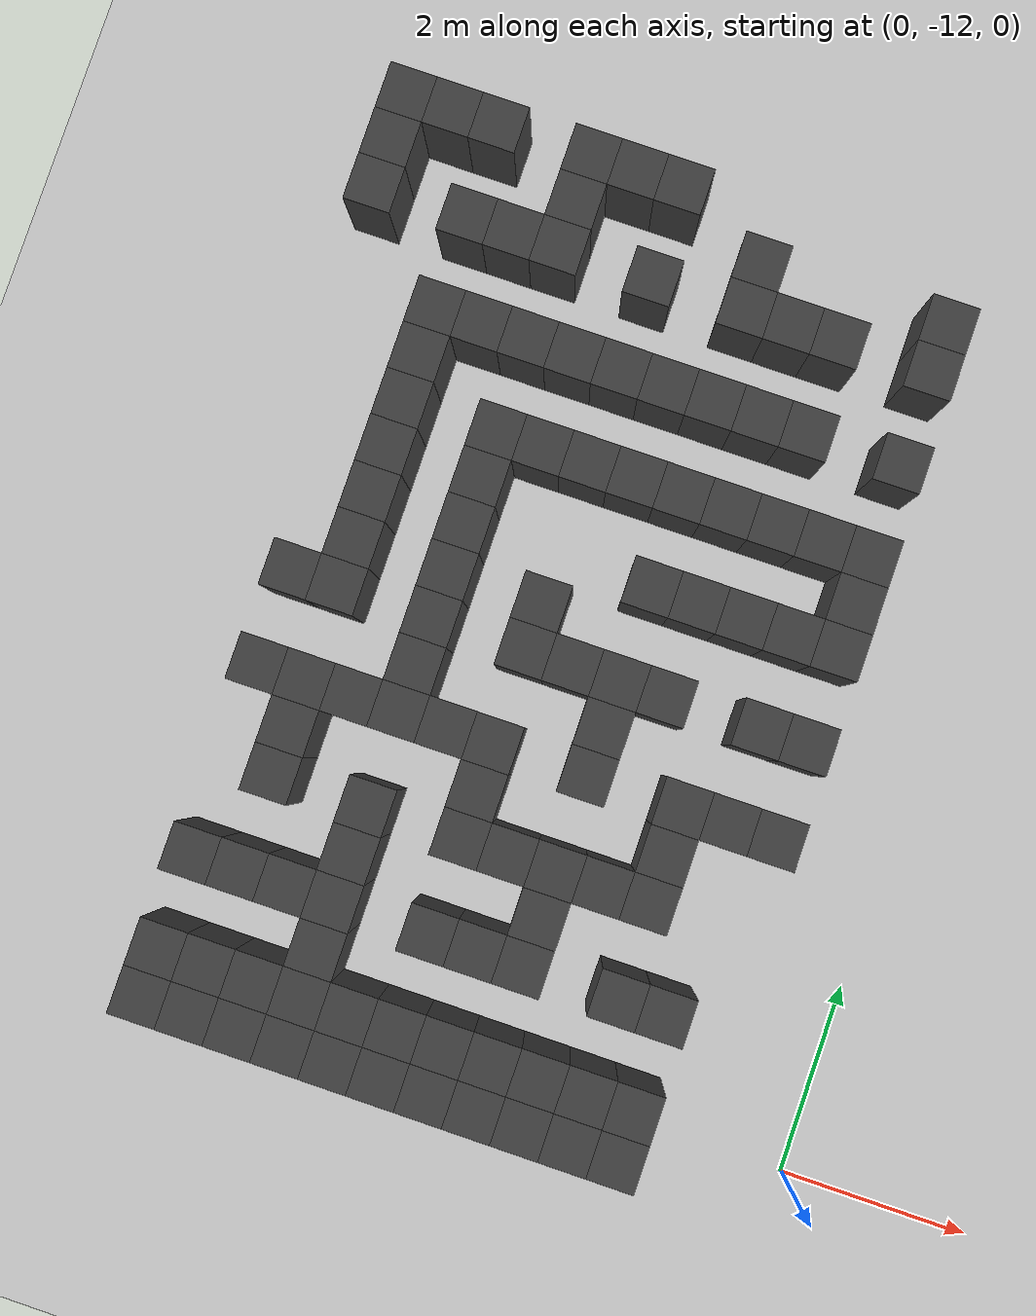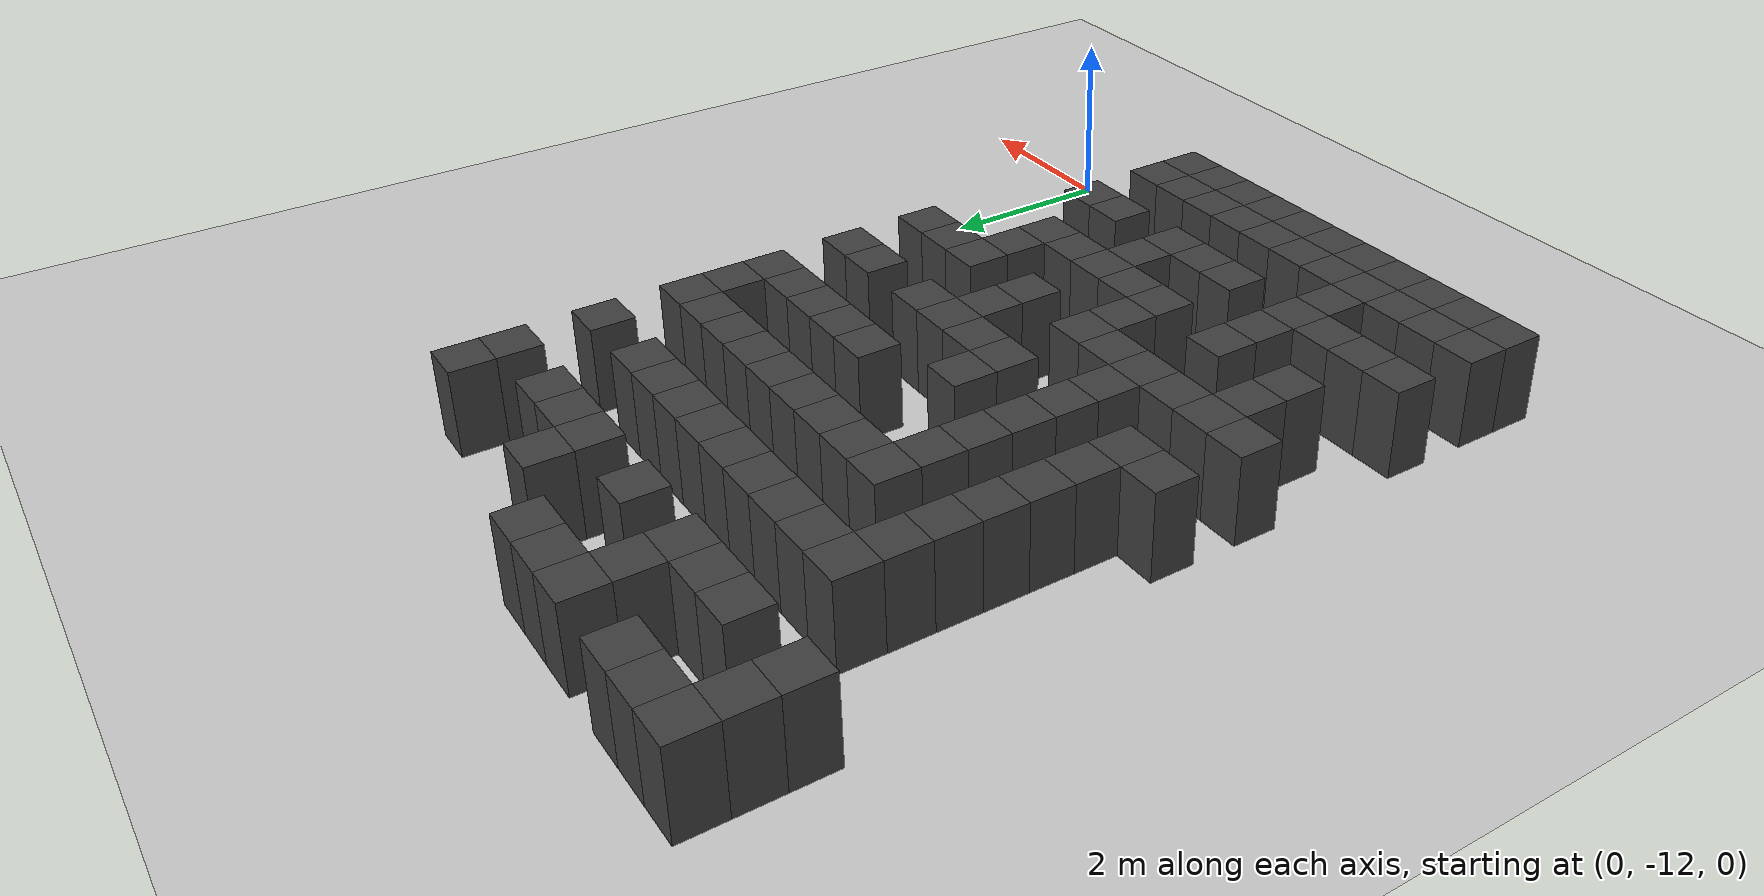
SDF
<sdf version="1.7">
 <world name="map_18553">
  <model name="ground_plane">
   <static>true</static>
   <link name="link">
    <collision name="collision">
     <geometry><plane><normal>0 0 1</normal><size>200 200</size></plane></geometry>
    </collision>
    <visual name="visual">
     <geometry><plane><normal>0 0 1</normal><size>200 200</size></plane></geometry>
     <material><ambient>0.8 0.8 0.8 1</ambient><diffuse>0.8 0.8 0.8 1</diffuse></material>
    </visual>
   </link>
  </model>
  <model name="maze_environment">
   <static>true</static>
   <link name="wall_763">
    <pose>-7.250 -2.750 0.500 0 0 0</pose>
    <collision name="col"><geometry><box><size>0.5 0.5 1.0</size></box></geometry></collision>
    <visual name="vis">
     <geometry><box><size>0.5 0.5 1.0</size></box></geometry>
     <material><ambient>0.15 0.15 0.15 1</ambient><diffuse>0.25 0.25 0.25 1</diffuse></material>
    </visual>
   </link>
   <link name="wall_764">
    <pose>-6.750 -2.750 0.500 0 0 0</pose>
    <collision name="col"><geometry><box><size>0.5 0.5 1.0</size></box></geometry></collision>
    <visual name="vis">
     <geometry><box><size>0.5 0.5 1.0</size></box></geometry>
     <material><ambient>0.15 0.15 0.15 1</ambient><diffuse>0.25 0.25 0.25 1</diffuse></material>
    </visual>
   </link>
   <link name="wall_765">
    <pose>-6.250 -2.750 0.500 0 0 0</pose>
    <collision name="col"><geometry><box><size>0.5 0.5 1.0</size></box></geometry></collision>
    <visual name="vis">
     <geometry><box><size>0.5 0.5 1.0</size></box></geometry>
     <material><ambient>0.15 0.15 0.15 1</ambient><diffuse>0.25 0.25 0.25 1</diffuse></material>
    </visual>
   </link>
   <link name="wall_766">
    <pose>-5.250 -2.750 0.500 0 0 0</pose>
    <collision name="col"><geometry><box><size>0.5 0.5 1.0</size></box></geometry></collision>
    <visual name="vis">
     <geometry><box><size>0.5 0.5 1.0</size></box></geometry>
     <material><ambient>0.15 0.15 0.15 1</ambient><diffuse>0.25 0.25 0.25 1</diffuse></material>
    </visual>
   </link>
   <link name="wall_767">
    <pose>-4.750 -2.750 0.500 0 0 0</pose>
    <collision name="col"><geometry><box><size>0.5 0.5 1.0</size></box></geometry></collision>
    <visual name="vis">
     <geometry><box><size>0.5 0.5 1.0</size></box></geometry>
     <material><ambient>0.15 0.15 0.15 1</ambient><diffuse>0.25 0.25 0.25 1</diffuse></material>
    </visual>
   </link>
   <link name="wall_768">
    <pose>-4.250 -2.750 0.500 0 0 0</pose>
    <collision name="col"><geometry><box><size>0.5 0.5 1.0</size></box></geometry></collision>
    <visual name="vis">
     <geometry><box><size>0.5 0.5 1.0</size></box></geometry>
     <material><ambient>0.15 0.15 0.15 1</ambient><diffuse>0.25 0.25 0.25 1</diffuse></material>
    </visual>
   </link>
   <link name="wall_795">
    <pose>-7.250 -3.250 0.500 0 0 0</pose>
    <collision name="col"><geometry><box><size>0.5 0.5 1.0</size></box></geometry></collision>
    <visual name="vis">
     <geometry><box><size>0.5 0.5 1.0</size></box></geometry>
     <material><ambient>0.15 0.15 0.15 1</ambient><diffuse>0.25 0.25 0.25 1</diffuse></material>
    </visual>
   </link>
   <link name="wall_796">
    <pose>-5.250 -3.250 0.500 0 0 0</pose>
    <collision name="col"><geometry><box><size>0.5 0.5 1.0</size></box></geometry></collision>
    <visual name="vis">
     <geometry><box><size>0.5 0.5 1.0</size></box></geometry>
     <material><ambient>0.15 0.15 0.15 1</ambient><diffuse>0.25 0.25 0.25 1</diffuse></material>
    </visual>
   </link>
   <link name="wall_797">
    <pose>-3.250 -3.250 0.500 0 0 0</pose>
    <collision name="col"><geometry><box><size>0.5 0.5 1.0</size></box></geometry></collision>
    <visual name="vis">
     <geometry><box><size>0.5 0.5 1.0</size></box></geometry>
     <material><ambient>0.15 0.15 0.15 1</ambient><diffuse>0.25 0.25 0.25 1</diffuse></material>
    </visual>
   </link>
   <link name="wall_798">
    <pose>-1.250 -3.250 0.500 0 0 0</pose>
    <collision name="col"><geometry><box><size>0.5 0.5 1.0</size></box></geometry></collision>
    <visual name="vis">
     <geometry><box><size>0.5 0.5 1.0</size></box></geometry>
     <material><ambient>0.15 0.15 0.15 1</ambient><diffuse>0.25 0.25 0.25 1</diffuse></material>
    </visual>
   </link>
   <link name="wall_813">
    <pose>-7.250 -3.750 0.500 0 0 0</pose>
    <collision name="col"><geometry><box><size>0.5 0.5 1.0</size></box></geometry></collision>
    <visual name="vis">
     <geometry><box><size>0.5 0.5 1.0</size></box></geometry>
     <material><ambient>0.15 0.15 0.15 1</ambient><diffuse>0.25 0.25 0.25 1</diffuse></material>
    </visual>
   </link>
   <link name="wall_814">
    <pose>-6.250 -3.750 0.500 0 0 0</pose>
    <collision name="col"><geometry><box><size>0.5 0.5 1.0</size></box></geometry></collision>
    <visual name="vis">
     <geometry><box><size>0.5 0.5 1.0</size></box></geometry>
     <material><ambient>0.15 0.15 0.15 1</ambient><diffuse>0.25 0.25 0.25 1</diffuse></material>
    </visual>
   </link>
   <link name="wall_815">
    <pose>-5.750 -3.750 0.500 0 0 0</pose>
    <collision name="col"><geometry><box><size>0.5 0.5 1.0</size></box></geometry></collision>
    <visual name="vis">
     <geometry><box><size>0.5 0.5 1.0</size></box></geometry>
     <material><ambient>0.15 0.15 0.15 1</ambient><diffuse>0.25 0.25 0.25 1</diffuse></material>
    </visual>
   </link>
   <link name="wall_816">
    <pose>-5.250 -3.750 0.500 0 0 0</pose>
    <collision name="col"><geometry><box><size>0.5 0.5 1.0</size></box></geometry></collision>
    <visual name="vis">
     <geometry><box><size>0.5 0.5 1.0</size></box></geometry>
     <material><ambient>0.15 0.15 0.15 1</ambient><diffuse>0.25 0.25 0.25 1</diffuse></material>
    </visual>
   </link>
   <link name="wall_817">
    <pose>-4.250 -3.750 0.500 0 0 0</pose>
    <collision name="col"><geometry><box><size>0.5 0.5 1.0</size></box></geometry></collision>
    <visual name="vis">
     <geometry><box><size>0.5 0.5 1.0</size></box></geometry>
     <material><ambient>0.15 0.15 0.15 1</ambient><diffuse>0.25 0.25 0.25 1</diffuse></material>
    </visual>
   </link>
   <link name="wall_818">
    <pose>-3.250 -3.750 0.500 0 0 0</pose>
    <collision name="col"><geometry><box><size>0.5 0.5 1.0</size></box></geometry></collision>
    <visual name="vis">
     <geometry><box><size>0.5 0.5 1.0</size></box></geometry>
     <material><ambient>0.15 0.15 0.15 1</ambient><diffuse>0.25 0.25 0.25 1</diffuse></material>
    </visual>
   </link>
   <link name="wall_819">
    <pose>-2.750 -3.750 0.500 0 0 0</pose>
    <collision name="col"><geometry><box><size>0.5 0.5 1.0</size></box></geometry></collision>
    <visual name="vis">
     <geometry><box><size>0.5 0.5 1.0</size></box></geometry>
     <material><ambient>0.15 0.15 0.15 1</ambient><diffuse>0.25 0.25 0.25 1</diffuse></material>
    </visual>
   </link>
   <link name="wall_820">
    <pose>-2.250 -3.750 0.500 0 0 0</pose>
    <collision name="col"><geometry><box><size>0.5 0.5 1.0</size></box></geometry></collision>
    <visual name="vis">
     <geometry><box><size>0.5 0.5 1.0</size></box></geometry>
     <material><ambient>0.15 0.15 0.15 1</ambient><diffuse>0.25 0.25 0.25 1</diffuse></material>
    </visual>
   </link>
   <link name="wall_821">
    <pose>-1.250 -3.750 0.500 0 0 0</pose>
    <collision name="col"><geometry><box><size>0.5 0.5 1.0</size></box></geometry></collision>
    <visual name="vis">
     <geometry><box><size>0.5 0.5 1.0</size></box></geometry>
     <material><ambient>0.15 0.15 0.15 1</ambient><diffuse>0.25 0.25 0.25 1</diffuse></material>
    </visual>
   </link>
   <link name="wall_861">
    <pose>-6.250 -4.750 0.500 0 0 0</pose>
    <collision name="col"><geometry><box><size>0.5 0.5 1.0</size></box></geometry></collision>
    <visual name="vis">
     <geometry><box><size>0.5 0.5 1.0</size></box></geometry>
     <material><ambient>0.15 0.15 0.15 1</ambient><diffuse>0.25 0.25 0.25 1</diffuse></material>
    </visual>
   </link>
   <link name="wall_862">
    <pose>-5.750 -4.750 0.500 0 0 0</pose>
    <collision name="col"><geometry><box><size>0.5 0.5 1.0</size></box></geometry></collision>
    <visual name="vis">
     <geometry><box><size>0.5 0.5 1.0</size></box></geometry>
     <material><ambient>0.15 0.15 0.15 1</ambient><diffuse>0.25 0.25 0.25 1</diffuse></material>
    </visual>
   </link>
   <link name="wall_863">
    <pose>-5.250 -4.750 0.500 0 0 0</pose>
    <collision name="col"><geometry><box><size>0.5 0.5 1.0</size></box></geometry></collision>
    <visual name="vis">
     <geometry><box><size>0.5 0.5 1.0</size></box></geometry>
     <material><ambient>0.15 0.15 0.15 1</ambient><diffuse>0.25 0.25 0.25 1</diffuse></material>
    </visual>
   </link>
   <link name="wall_864">
    <pose>-4.750 -4.750 0.500 0 0 0</pose>
    <collision name="col"><geometry><box><size>0.5 0.5 1.0</size></box></geometry></collision>
    <visual name="vis">
     <geometry><box><size>0.5 0.5 1.0</size></box></geometry>
     <material><ambient>0.15 0.15 0.15 1</ambient><diffuse>0.25 0.25 0.25 1</diffuse></material>
    </visual>
   </link>
   <link name="wall_865">
    <pose>-4.250 -4.750 0.500 0 0 0</pose>
    <collision name="col"><geometry><box><size>0.5 0.5 1.0</size></box></geometry></collision>
    <visual name="vis">
     <geometry><box><size>0.5 0.5 1.0</size></box></geometry>
     <material><ambient>0.15 0.15 0.15 1</ambient><diffuse>0.25 0.25 0.25 1</diffuse></material>
    </visual>
   </link>
   <link name="wall_866">
    <pose>-3.750 -4.750 0.500 0 0 0</pose>
    <collision name="col"><geometry><box><size>0.5 0.5 1.0</size></box></geometry></collision>
    <visual name="vis">
     <geometry><box><size>0.5 0.5 1.0</size></box></geometry>
     <material><ambient>0.15 0.15 0.15 1</ambient><diffuse>0.25 0.25 0.25 1</diffuse></material>
    </visual>
   </link>
   <link name="wall_867">
    <pose>-3.250 -4.750 0.500 0 0 0</pose>
    <collision name="col"><geometry><box><size>0.5 0.5 1.0</size></box></geometry></collision>
    <visual name="vis">
     <geometry><box><size>0.5 0.5 1.0</size></box></geometry>
     <material><ambient>0.15 0.15 0.15 1</ambient><diffuse>0.25 0.25 0.25 1</diffuse></material>
    </visual>
   </link>
   <link name="wall_868">
    <pose>-2.750 -4.750 0.500 0 0 0</pose>
    <collision name="col"><geometry><box><size>0.5 0.5 1.0</size></box></geometry></collision>
    <visual name="vis">
     <geometry><box><size>0.5 0.5 1.0</size></box></geometry>
     <material><ambient>0.15 0.15 0.15 1</ambient><diffuse>0.25 0.25 0.25 1</diffuse></material>
    </visual>
   </link>
   <link name="wall_869">
    <pose>-2.250 -4.750 0.500 0 0 0</pose>
    <collision name="col"><geometry><box><size>0.5 0.5 1.0</size></box></geometry></collision>
    <visual name="vis">
     <geometry><box><size>0.5 0.5 1.0</size></box></geometry>
     <material><ambient>0.15 0.15 0.15 1</ambient><diffuse>0.25 0.25 0.25 1</diffuse></material>
    </visual>
   </link>
   <link name="wall_870">
    <pose>-1.250 -4.750 0.500 0 0 0</pose>
    <collision name="col"><geometry><box><size>0.5 0.5 1.0</size></box></geometry></collision>
    <visual name="vis">
     <geometry><box><size>0.5 0.5 1.0</size></box></geometry>
     <material><ambient>0.15 0.15 0.15 1</ambient><diffuse>0.25 0.25 0.25 1</diffuse></material>
    </visual>
   </link>
   <link name="wall_895">
    <pose>-6.250 -5.250 0.500 0 0 0</pose>
    <collision name="col"><geometry><box><size>0.5 0.5 1.0</size></box></geometry></collision>
    <visual name="vis">
     <geometry><box><size>0.5 0.5 1.0</size></box></geometry>
     <material><ambient>0.15 0.15 0.15 1</ambient><diffuse>0.25 0.25 0.25 1</diffuse></material>
    </visual>
   </link>
   <link name="wall_914">
    <pose>-6.250 -5.750 0.500 0 0 0</pose>
    <collision name="col"><geometry><box><size>0.5 0.5 1.0</size></box></geometry></collision>
    <visual name="vis">
     <geometry><box><size>0.5 0.5 1.0</size></box></geometry>
     <material><ambient>0.15 0.15 0.15 1</ambient><diffuse>0.25 0.25 0.25 1</diffuse></material>
    </visual>
   </link>
   <link name="wall_915">
    <pose>-5.250 -5.750 0.500 0 0 0</pose>
    <collision name="col"><geometry><box><size>0.5 0.5 1.0</size></box></geometry></collision>
    <visual name="vis">
     <geometry><box><size>0.5 0.5 1.0</size></box></geometry>
     <material><ambient>0.15 0.15 0.15 1</ambient><diffuse>0.25 0.25 0.25 1</diffuse></material>
    </visual>
   </link>
   <link name="wall_916">
    <pose>-4.750 -5.750 0.500 0 0 0</pose>
    <collision name="col"><geometry><box><size>0.5 0.5 1.0</size></box></geometry></collision>
    <visual name="vis">
     <geometry><box><size>0.5 0.5 1.0</size></box></geometry>
     <material><ambient>0.15 0.15 0.15 1</ambient><diffuse>0.25 0.25 0.25 1</diffuse></material>
    </visual>
   </link>
   <link name="wall_917">
    <pose>-4.250 -5.750 0.500 0 0 0</pose>
    <collision name="col"><geometry><box><size>0.5 0.5 1.0</size></box></geometry></collision>
    <visual name="vis">
     <geometry><box><size>0.5 0.5 1.0</size></box></geometry>
     <material><ambient>0.15 0.15 0.15 1</ambient><diffuse>0.25 0.25 0.25 1</diffuse></material>
    </visual>
   </link>
   <link name="wall_918">
    <pose>-3.750 -5.750 0.500 0 0 0</pose>
    <collision name="col"><geometry><box><size>0.5 0.5 1.0</size></box></geometry></collision>
    <visual name="vis">
     <geometry><box><size>0.5 0.5 1.0</size></box></geometry>
     <material><ambient>0.15 0.15 0.15 1</ambient><diffuse>0.25 0.25 0.25 1</diffuse></material>
    </visual>
   </link>
   <link name="wall_919">
    <pose>-3.250 -5.750 0.500 0 0 0</pose>
    <collision name="col"><geometry><box><size>0.5 0.5 1.0</size></box></geometry></collision>
    <visual name="vis">
     <geometry><box><size>0.5 0.5 1.0</size></box></geometry>
     <material><ambient>0.15 0.15 0.15 1</ambient><diffuse>0.25 0.25 0.25 1</diffuse></material>
    </visual>
   </link>
   <link name="wall_920">
    <pose>-2.750 -5.750 0.500 0 0 0</pose>
    <collision name="col"><geometry><box><size>0.5 0.5 1.0</size></box></geometry></collision>
    <visual name="vis">
     <geometry><box><size>0.5 0.5 1.0</size></box></geometry>
     <material><ambient>0.15 0.15 0.15 1</ambient><diffuse>0.25 0.25 0.25 1</diffuse></material>
    </visual>
   </link>
   <link name="wall_921">
    <pose>-2.250 -5.750 0.500 0 0 0</pose>
    <collision name="col"><geometry><box><size>0.5 0.5 1.0</size></box></geometry></collision>
    <visual name="vis">
     <geometry><box><size>0.5 0.5 1.0</size></box></geometry>
     <material><ambient>0.15 0.15 0.15 1</ambient><diffuse>0.25 0.25 0.25 1</diffuse></material>
    </visual>
   </link>
   <link name="wall_922">
    <pose>-1.750 -5.750 0.500 0 0 0</pose>
    <collision name="col"><geometry><box><size>0.5 0.5 1.0</size></box></geometry></collision>
    <visual name="vis">
     <geometry><box><size>0.5 0.5 1.0</size></box></geometry>
     <material><ambient>0.15 0.15 0.15 1</ambient><diffuse>0.25 0.25 0.25 1</diffuse></material>
    </visual>
   </link>
   <link name="wall_923">
    <pose>-1.250 -5.750 0.500 0 0 0</pose>
    <collision name="col"><geometry><box><size>0.5 0.5 1.0</size></box></geometry></collision>
    <visual name="vis">
     <geometry><box><size>0.5 0.5 1.0</size></box></geometry>
     <material><ambient>0.15 0.15 0.15 1</ambient><diffuse>0.25 0.25 0.25 1</diffuse></material>
    </visual>
   </link>
   <link name="wall_948">
    <pose>-6.250 -6.250 0.500 0 0 0</pose>
    <collision name="col"><geometry><box><size>0.5 0.5 1.0</size></box></geometry></collision>
    <visual name="vis">
     <geometry><box><size>0.5 0.5 1.0</size></box></geometry>
     <material><ambient>0.15 0.15 0.15 1</ambient><diffuse>0.25 0.25 0.25 1</diffuse></material>
    </visual>
   </link>
   <link name="wall_949">
    <pose>-5.250 -6.250 0.500 0 0 0</pose>
    <collision name="col"><geometry><box><size>0.5 0.5 1.0</size></box></geometry></collision>
    <visual name="vis">
     <geometry><box><size>0.5 0.5 1.0</size></box></geometry>
     <material><ambient>0.15 0.15 0.15 1</ambient><diffuse>0.25 0.25 0.25 1</diffuse></material>
    </visual>
   </link>
   <link name="wall_950">
    <pose>-1.250 -6.250 0.500 0 0 0</pose>
    <collision name="col"><geometry><box><size>0.5 0.5 1.0</size></box></geometry></collision>
    <visual name="vis">
     <geometry><box><size>0.5 0.5 1.0</size></box></geometry>
     <material><ambient>0.15 0.15 0.15 1</ambient><diffuse>0.25 0.25 0.25 1</diffuse></material>
    </visual>
   </link>
   <link name="wall_964">
    <pose>-6.250 -6.750 0.500 0 0 0</pose>
    <collision name="col"><geometry><box><size>0.5 0.5 1.0</size></box></geometry></collision>
    <visual name="vis">
     <geometry><box><size>0.5 0.5 1.0</size></box></geometry>
     <material><ambient>0.15 0.15 0.15 1</ambient><diffuse>0.25 0.25 0.25 1</diffuse></material>
    </visual>
   </link>
   <link name="wall_965">
    <pose>-5.250 -6.750 0.500 0 0 0</pose>
    <collision name="col"><geometry><box><size>0.5 0.5 1.0</size></box></geometry></collision>
    <visual name="vis">
     <geometry><box><size>0.5 0.5 1.0</size></box></geometry>
     <material><ambient>0.15 0.15 0.15 1</ambient><diffuse>0.25 0.25 0.25 1</diffuse></material>
    </visual>
   </link>
   <link name="wall_966">
    <pose>-3.250 -6.750 0.500 0 0 0</pose>
    <collision name="col"><geometry><box><size>0.5 0.5 1.0</size></box></geometry></collision>
    <visual name="vis">
     <geometry><box><size>0.5 0.5 1.0</size></box></geometry>
     <material><ambient>0.15 0.15 0.15 1</ambient><diffuse>0.25 0.25 0.25 1</diffuse></material>
    </visual>
   </link>
   <link name="wall_967">
    <pose>-2.750 -6.750 0.500 0 0 0</pose>
    <collision name="col"><geometry><box><size>0.5 0.5 1.0</size></box></geometry></collision>
    <visual name="vis">
     <geometry><box><size>0.5 0.5 1.0</size></box></geometry>
     <material><ambient>0.15 0.15 0.15 1</ambient><diffuse>0.25 0.25 0.25 1</diffuse></material>
    </visual>
   </link>
   <link name="wall_968">
    <pose>-2.250 -6.750 0.500 0 0 0</pose>
    <collision name="col"><geometry><box><size>0.5 0.5 1.0</size></box></geometry></collision>
    <visual name="vis">
     <geometry><box><size>0.5 0.5 1.0</size></box></geometry>
     <material><ambient>0.15 0.15 0.15 1</ambient><diffuse>0.25 0.25 0.25 1</diffuse></material>
    </visual>
   </link>
   <link name="wall_969">
    <pose>-1.750 -6.750 0.500 0 0 0</pose>
    <collision name="col"><geometry><box><size>0.5 0.5 1.0</size></box></geometry></collision>
    <visual name="vis">
     <geometry><box><size>0.5 0.5 1.0</size></box></geometry>
     <material><ambient>0.15 0.15 0.15 1</ambient><diffuse>0.25 0.25 0.25 1</diffuse></material>
    </visual>
   </link>
   <link name="wall_970">
    <pose>-1.250 -6.750 0.500 0 0 0</pose>
    <collision name="col"><geometry><box><size>0.5 0.5 1.0</size></box></geometry></collision>
    <visual name="vis">
     <geometry><box><size>0.5 0.5 1.0</size></box></geometry>
     <material><ambient>0.15 0.15 0.15 1</ambient><diffuse>0.25 0.25 0.25 1</diffuse></material>
    </visual>
   </link>
   <link name="wall_995">
    <pose>-6.250 -7.250 0.500 0 0 0</pose>
    <collision name="col"><geometry><box><size>0.5 0.5 1.0</size></box></geometry></collision>
    <visual name="vis">
     <geometry><box><size>0.5 0.5 1.0</size></box></geometry>
     <material><ambient>0.15 0.15 0.15 1</ambient><diffuse>0.25 0.25 0.25 1</diffuse></material>
    </visual>
   </link>
   <link name="wall_996">
    <pose>-5.250 -7.250 0.500 0 0 0</pose>
    <collision name="col"><geometry><box><size>0.5 0.5 1.0</size></box></geometry></collision>
    <visual name="vis">
     <geometry><box><size>0.5 0.5 1.0</size></box></geometry>
     <material><ambient>0.15 0.15 0.15 1</ambient><diffuse>0.25 0.25 0.25 1</diffuse></material>
    </visual>
   </link>
   <link name="wall_997">
    <pose>-4.250 -7.250 0.500 0 0 0</pose>
    <collision name="col"><geometry><box><size>0.5 0.5 1.0</size></box></geometry></collision>
    <visual name="vis">
     <geometry><box><size>0.5 0.5 1.0</size></box></geometry>
     <material><ambient>0.15 0.15 0.15 1</ambient><diffuse>0.25 0.25 0.25 1</diffuse></material>
    </visual>
   </link>
   <link name="wall_1015">
    <pose>-6.750 -7.750 0.500 0 0 0</pose>
    <collision name="col"><geometry><box><size>0.5 0.5 1.0</size></box></geometry></collision>
    <visual name="vis">
     <geometry><box><size>0.5 0.5 1.0</size></box></geometry>
     <material><ambient>0.15 0.15 0.15 1</ambient><diffuse>0.25 0.25 0.25 1</diffuse></material>
    </visual>
   </link>
   <link name="wall_1016">
    <pose>-6.250 -7.750 0.500 0 0 0</pose>
    <collision name="col"><geometry><box><size>0.5 0.5 1.0</size></box></geometry></collision>
    <visual name="vis">
     <geometry><box><size>0.5 0.5 1.0</size></box></geometry>
     <material><ambient>0.15 0.15 0.15 1</ambient><diffuse>0.25 0.25 0.25 1</diffuse></material>
    </visual>
   </link>
   <link name="wall_1017">
    <pose>-5.250 -7.750 0.500 0 0 0</pose>
    <collision name="col"><geometry><box><size>0.5 0.5 1.0</size></box></geometry></collision>
    <visual name="vis">
     <geometry><box><size>0.5 0.5 1.0</size></box></geometry>
     <material><ambient>0.15 0.15 0.15 1</ambient><diffuse>0.25 0.25 0.25 1</diffuse></material>
    </visual>
   </link>
   <link name="wall_1018">
    <pose>-4.250 -7.750 0.500 0 0 0</pose>
    <collision name="col"><geometry><box><size>0.5 0.5 1.0</size></box></geometry></collision>
    <visual name="vis">
     <geometry><box><size>0.5 0.5 1.0</size></box></geometry>
     <material><ambient>0.15 0.15 0.15 1</ambient><diffuse>0.25 0.25 0.25 1</diffuse></material>
    </visual>
   </link>
   <link name="wall_1019">
    <pose>-3.750 -7.750 0.500 0 0 0</pose>
    <collision name="col"><geometry><box><size>0.5 0.5 1.0</size></box></geometry></collision>
    <visual name="vis">
     <geometry><box><size>0.5 0.5 1.0</size></box></geometry>
     <material><ambient>0.15 0.15 0.15 1</ambient><diffuse>0.25 0.25 0.25 1</diffuse></material>
    </visual>
   </link>
   <link name="wall_1020">
    <pose>-3.250 -7.750 0.500 0 0 0</pose>
    <collision name="col"><geometry><box><size>0.5 0.5 1.0</size></box></geometry></collision>
    <visual name="vis">
     <geometry><box><size>0.5 0.5 1.0</size></box></geometry>
     <material><ambient>0.15 0.15 0.15 1</ambient><diffuse>0.25 0.25 0.25 1</diffuse></material>
    </visual>
   </link>
   <link name="wall_1021">
    <pose>-2.750 -7.750 0.500 0 0 0</pose>
    <collision name="col"><geometry><box><size>0.5 0.5 1.0</size></box></geometry></collision>
    <visual name="vis">
     <geometry><box><size>0.5 0.5 1.0</size></box></geometry>
     <material><ambient>0.15 0.15 0.15 1</ambient><diffuse>0.25 0.25 0.25 1</diffuse></material>
    </visual>
   </link>
   <link name="wall_1022">
    <pose>-1.750 -7.750 0.500 0 0 0</pose>
    <collision name="col"><geometry><box><size>0.5 0.5 1.0</size></box></geometry></collision>
    <visual name="vis">
     <geometry><box><size>0.5 0.5 1.0</size></box></geometry>
     <material><ambient>0.15 0.15 0.15 1</ambient><diffuse>0.25 0.25 0.25 1</diffuse></material>
    </visual>
   </link>
   <link name="wall_1023">
    <pose>-1.250 -7.750 0.500 0 0 0</pose>
    <collision name="col"><geometry><box><size>0.5 0.5 1.0</size></box></geometry></collision>
    <visual name="vis">
     <geometry><box><size>0.5 0.5 1.0</size></box></geometry>
     <material><ambient>0.15 0.15 0.15 1</ambient><diffuse>0.25 0.25 0.25 1</diffuse></material>
    </visual>
   </link>
   <link name="wall_1044">
    <pose>-5.250 -8.250 0.500 0 0 0</pose>
    <collision name="col"><geometry><box><size>0.5 0.5 1.0</size></box></geometry></collision>
    <visual name="vis">
     <geometry><box><size>0.5 0.5 1.0</size></box></geometry>
     <material><ambient>0.15 0.15 0.15 1</ambient><diffuse>0.25 0.25 0.25 1</diffuse></material>
    </visual>
   </link>
   <link name="wall_1045">
    <pose>-3.250 -8.250 0.500 0 0 0</pose>
    <collision name="col"><geometry><box><size>0.5 0.5 1.0</size></box></geometry></collision>
    <visual name="vis">
     <geometry><box><size>0.5 0.5 1.0</size></box></geometry>
     <material><ambient>0.15 0.15 0.15 1</ambient><diffuse>0.25 0.25 0.25 1</diffuse></material>
    </visual>
   </link>
   <link name="wall_1063">
    <pose>-6.750 -8.750 0.500 0 0 0</pose>
    <collision name="col"><geometry><box><size>0.5 0.5 1.0</size></box></geometry></collision>
    <visual name="vis">
     <geometry><box><size>0.5 0.5 1.0</size></box></geometry>
     <material><ambient>0.15 0.15 0.15 1</ambient><diffuse>0.25 0.25 0.25 1</diffuse></material>
    </visual>
   </link>
   <link name="wall_1064">
    <pose>-6.250 -8.750 0.500 0 0 0</pose>
    <collision name="col"><geometry><box><size>0.5 0.5 1.0</size></box></geometry></collision>
    <visual name="vis">
     <geometry><box><size>0.5 0.5 1.0</size></box></geometry>
     <material><ambient>0.15 0.15 0.15 1</ambient><diffuse>0.25 0.25 0.25 1</diffuse></material>
    </visual>
   </link>
   <link name="wall_1065">
    <pose>-5.750 -8.750 0.500 0 0 0</pose>
    <collision name="col"><geometry><box><size>0.5 0.5 1.0</size></box></geometry></collision>
    <visual name="vis">
     <geometry><box><size>0.5 0.5 1.0</size></box></geometry>
     <material><ambient>0.15 0.15 0.15 1</ambient><diffuse>0.25 0.25 0.25 1</diffuse></material>
    </visual>
   </link>
   <link name="wall_1066">
    <pose>-5.250 -8.750 0.500 0 0 0</pose>
    <collision name="col"><geometry><box><size>0.5 0.5 1.0</size></box></geometry></collision>
    <visual name="vis">
     <geometry><box><size>0.5 0.5 1.0</size></box></geometry>
     <material><ambient>0.15 0.15 0.15 1</ambient><diffuse>0.25 0.25 0.25 1</diffuse></material>
    </visual>
   </link>
   <link name="wall_1067">
    <pose>-4.750 -8.750 0.500 0 0 0</pose>
    <collision name="col"><geometry><box><size>0.5 0.5 1.0</size></box></geometry></collision>
    <visual name="vis">
     <geometry><box><size>0.5 0.5 1.0</size></box></geometry>
     <material><ambient>0.15 0.15 0.15 1</ambient><diffuse>0.25 0.25 0.25 1</diffuse></material>
    </visual>
   </link>
   <link name="wall_1068">
    <pose>-4.250 -8.750 0.500 0 0 0</pose>
    <collision name="col"><geometry><box><size>0.5 0.5 1.0</size></box></geometry></collision>
    <visual name="vis">
     <geometry><box><size>0.5 0.5 1.0</size></box></geometry>
     <material><ambient>0.15 0.15 0.15 1</ambient><diffuse>0.25 0.25 0.25 1</diffuse></material>
    </visual>
   </link>
   <link name="wall_1069">
    <pose>-3.250 -8.750 0.500 0 0 0</pose>
    <collision name="col"><geometry><box><size>0.5 0.5 1.0</size></box></geometry></collision>
    <visual name="vis">
     <geometry><box><size>0.5 0.5 1.0</size></box></geometry>
     <material><ambient>0.15 0.15 0.15 1</ambient><diffuse>0.25 0.25 0.25 1</diffuse></material>
    </visual>
   </link>
   <link name="wall_1070">
    <pose>-2.250 -8.750 0.500 0 0 0</pose>
    <collision name="col"><geometry><box><size>0.5 0.5 1.0</size></box></geometry></collision>
    <visual name="vis">
     <geometry><box><size>0.5 0.5 1.0</size></box></geometry>
     <material><ambient>0.15 0.15 0.15 1</ambient><diffuse>0.25 0.25 0.25 1</diffuse></material>
    </visual>
   </link>
   <link name="wall_1071">
    <pose>-1.750 -8.750 0.500 0 0 0</pose>
    <collision name="col"><geometry><box><size>0.5 0.5 1.0</size></box></geometry></collision>
    <visual name="vis">
     <geometry><box><size>0.5 0.5 1.0</size></box></geometry>
     <material><ambient>0.15 0.15 0.15 1</ambient><diffuse>0.25 0.25 0.25 1</diffuse></material>
    </visual>
   </link>
   <link name="wall_1072">
    <pose>-1.250 -8.750 0.500 0 0 0</pose>
    <collision name="col"><geometry><box><size>0.5 0.5 1.0</size></box></geometry></collision>
    <visual name="vis">
     <geometry><box><size>0.5 0.5 1.0</size></box></geometry>
     <material><ambient>0.15 0.15 0.15 1</ambient><diffuse>0.25 0.25 0.25 1</diffuse></material>
    </visual>
   </link>
   <link name="wall_1095">
    <pose>-6.250 -9.250 0.500 0 0 0</pose>
    <collision name="col"><geometry><box><size>0.5 0.5 1.0</size></box></geometry></collision>
    <visual name="vis">
     <geometry><box><size>0.5 0.5 1.0</size></box></geometry>
     <material><ambient>0.15 0.15 0.15 1</ambient><diffuse>0.25 0.25 0.25 1</diffuse></material>
    </visual>
   </link>
   <link name="wall_1096">
    <pose>-4.250 -9.250 0.500 0 0 0</pose>
    <collision name="col"><geometry><box><size>0.5 0.5 1.0</size></box></geometry></collision>
    <visual name="vis">
     <geometry><box><size>0.5 0.5 1.0</size></box></geometry>
     <material><ambient>0.15 0.15 0.15 1</ambient><diffuse>0.25 0.25 0.25 1</diffuse></material>
    </visual>
   </link>
   <link name="wall_1097">
    <pose>-2.250 -9.250 0.500 0 0 0</pose>
    <collision name="col"><geometry><box><size>0.5 0.5 1.0</size></box></geometry></collision>
    <visual name="vis">
     <geometry><box><size>0.5 0.5 1.0</size></box></geometry>
     <material><ambient>0.15 0.15 0.15 1</ambient><diffuse>0.25 0.25 0.25 1</diffuse></material>
    </visual>
   </link>
   <link name="wall_1115">
    <pose>-6.250 -9.750 0.500 0 0 0</pose>
    <collision name="col"><geometry><box><size>0.5 0.5 1.0</size></box></geometry></collision>
    <visual name="vis">
     <geometry><box><size>0.5 0.5 1.0</size></box></geometry>
     <material><ambient>0.15 0.15 0.15 1</ambient><diffuse>0.25 0.25 0.25 1</diffuse></material>
    </visual>
   </link>
   <link name="wall_1116">
    <pose>-5.250 -9.750 0.500 0 0 0</pose>
    <collision name="col"><geometry><box><size>0.5 0.5 1.0</size></box></geometry></collision>
    <visual name="vis">
     <geometry><box><size>0.5 0.5 1.0</size></box></geometry>
     <material><ambient>0.15 0.15 0.15 1</ambient><diffuse>0.25 0.25 0.25 1</diffuse></material>
    </visual>
   </link>
   <link name="wall_1117">
    <pose>-4.250 -9.750 0.500 0 0 0</pose>
    <collision name="col"><geometry><box><size>0.5 0.5 1.0</size></box></geometry></collision>
    <visual name="vis">
     <geometry><box><size>0.5 0.5 1.0</size></box></geometry>
     <material><ambient>0.15 0.15 0.15 1</ambient><diffuse>0.25 0.25 0.25 1</diffuse></material>
    </visual>
   </link>
   <link name="wall_1118">
    <pose>-3.750 -9.750 0.500 0 0 0</pose>
    <collision name="col"><geometry><box><size>0.5 0.5 1.0</size></box></geometry></collision>
    <visual name="vis">
     <geometry><box><size>0.5 0.5 1.0</size></box></geometry>
     <material><ambient>0.15 0.15 0.15 1</ambient><diffuse>0.25 0.25 0.25 1</diffuse></material>
    </visual>
   </link>
   <link name="wall_1119">
    <pose>-3.250 -9.750 0.500 0 0 0</pose>
    <collision name="col"><geometry><box><size>0.5 0.5 1.0</size></box></geometry></collision>
    <visual name="vis">
     <geometry><box><size>0.5 0.5 1.0</size></box></geometry>
     <material><ambient>0.15 0.15 0.15 1</ambient><diffuse>0.25 0.25 0.25 1</diffuse></material>
    </visual>
   </link>
   <link name="wall_1120">
    <pose>-2.750 -9.750 0.500 0 0 0</pose>
    <collision name="col"><geometry><box><size>0.5 0.5 1.0</size></box></geometry></collision>
    <visual name="vis">
     <geometry><box><size>0.5 0.5 1.0</size></box></geometry>
     <material><ambient>0.15 0.15 0.15 1</ambient><diffuse>0.25 0.25 0.25 1</diffuse></material>
    </visual>
   </link>
   <link name="wall_1121">
    <pose>-2.250 -9.750 0.500 0 0 0</pose>
    <collision name="col"><geometry><box><size>0.5 0.5 1.0</size></box></geometry></collision>
    <visual name="vis">
     <geometry><box><size>0.5 0.5 1.0</size></box></geometry>
     <material><ambient>0.15 0.15 0.15 1</ambient><diffuse>0.25 0.25 0.25 1</diffuse></material>
    </visual>
   </link>
   <link name="wall_1146">
    <pose>-5.250 -10.250 0.500 0 0 0</pose>
    <collision name="col"><geometry><box><size>0.5 0.5 1.0</size></box></geometry></collision>
    <visual name="vis">
     <geometry><box><size>0.5 0.5 1.0</size></box></geometry>
     <material><ambient>0.15 0.15 0.15 1</ambient><diffuse>0.25 0.25 0.25 1</diffuse></material>
    </visual>
   </link>
   <link name="wall_1147">
    <pose>-3.250 -10.250 0.500 0 0 0</pose>
    <collision name="col"><geometry><box><size>0.5 0.5 1.0</size></box></geometry></collision>
    <visual name="vis">
     <geometry><box><size>0.5 0.5 1.0</size></box></geometry>
     <material><ambient>0.15 0.15 0.15 1</ambient><diffuse>0.25 0.25 0.25 1</diffuse></material>
    </visual>
   </link>
   <link name="wall_1168">
    <pose>-6.750 -10.750 0.500 0 0 0</pose>
    <collision name="col"><geometry><box><size>0.5 0.5 1.0</size></box></geometry></collision>
    <visual name="vis">
     <geometry><box><size>0.5 0.5 1.0</size></box></geometry>
     <material><ambient>0.15 0.15 0.15 1</ambient><diffuse>0.25 0.25 0.25 1</diffuse></material>
    </visual>
   </link>
   <link name="wall_1169">
    <pose>-6.250 -10.750 0.500 0 0 0</pose>
    <collision name="col"><geometry><box><size>0.5 0.5 1.0</size></box></geometry></collision>
    <visual name="vis">
     <geometry><box><size>0.5 0.5 1.0</size></box></geometry>
     <material><ambient>0.15 0.15 0.15 1</ambient><diffuse>0.25 0.25 0.25 1</diffuse></material>
    </visual>
   </link>
   <link name="wall_1170">
    <pose>-5.750 -10.750 0.500 0 0 0</pose>
    <collision name="col"><geometry><box><size>0.5 0.5 1.0</size></box></geometry></collision>
    <visual name="vis">
     <geometry><box><size>0.5 0.5 1.0</size></box></geometry>
     <material><ambient>0.15 0.15 0.15 1</ambient><diffuse>0.25 0.25 0.25 1</diffuse></material>
    </visual>
   </link>
   <link name="wall_1171">
    <pose>-5.250 -10.750 0.500 0 0 0</pose>
    <collision name="col"><geometry><box><size>0.5 0.5 1.0</size></box></geometry></collision>
    <visual name="vis">
     <geometry><box><size>0.5 0.5 1.0</size></box></geometry>
     <material><ambient>0.15 0.15 0.15 1</ambient><diffuse>0.25 0.25 0.25 1</diffuse></material>
    </visual>
   </link>
   <link name="wall_1172">
    <pose>-4.250 -10.750 0.500 0 0 0</pose>
    <collision name="col"><geometry><box><size>0.5 0.5 1.0</size></box></geometry></collision>
    <visual name="vis">
     <geometry><box><size>0.5 0.5 1.0</size></box></geometry>
     <material><ambient>0.15 0.15 0.15 1</ambient><diffuse>0.25 0.25 0.25 1</diffuse></material>
    </visual>
   </link>
   <link name="wall_1173">
    <pose>-3.750 -10.750 0.500 0 0 0</pose>
    <collision name="col"><geometry><box><size>0.5 0.5 1.0</size></box></geometry></collision>
    <visual name="vis">
     <geometry><box><size>0.5 0.5 1.0</size></box></geometry>
     <material><ambient>0.15 0.15 0.15 1</ambient><diffuse>0.25 0.25 0.25 1</diffuse></material>
    </visual>
   </link>
   <link name="wall_1174">
    <pose>-3.250 -10.750 0.500 0 0 0</pose>
    <collision name="col"><geometry><box><size>0.5 0.5 1.0</size></box></geometry></collision>
    <visual name="vis">
     <geometry><box><size>0.5 0.5 1.0</size></box></geometry>
     <material><ambient>0.15 0.15 0.15 1</ambient><diffuse>0.25 0.25 0.25 1</diffuse></material>
    </visual>
   </link>
   <link name="wall_1175">
    <pose>-2.250 -10.750 0.500 0 0 0</pose>
    <collision name="col"><geometry><box><size>0.5 0.5 1.0</size></box></geometry></collision>
    <visual name="vis">
     <geometry><box><size>0.5 0.5 1.0</size></box></geometry>
     <material><ambient>0.15 0.15 0.15 1</ambient><diffuse>0.25 0.25 0.25 1</diffuse></material>
    </visual>
   </link>
   <link name="wall_1176">
    <pose>-1.750 -10.750 0.500 0 0 0</pose>
    <collision name="col"><geometry><box><size>0.5 0.5 1.0</size></box></geometry></collision>
    <visual name="vis">
     <geometry><box><size>0.5 0.5 1.0</size></box></geometry>
     <material><ambient>0.15 0.15 0.15 1</ambient><diffuse>0.25 0.25 0.25 1</diffuse></material>
    </visual>
   </link>
   <link name="wall_1196">
    <pose>-5.250 -11.250 0.500 0 0 0</pose>
    <collision name="col"><geometry><box><size>0.5 0.5 1.0</size></box></geometry></collision>
    <visual name="vis">
     <geometry><box><size>0.5 0.5 1.0</size></box></geometry>
     <material><ambient>0.15 0.15 0.15 1</ambient><diffuse>0.25 0.25 0.25 1</diffuse></material>
    </visual>
   </link>
   <link name="wall_1213">
    <pose>-6.750 -11.750 0.500 0 0 0</pose>
    <collision name="col"><geometry><box><size>0.5 0.5 1.0</size></box></geometry></collision>
    <visual name="vis">
     <geometry><box><size>0.5 0.5 1.0</size></box></geometry>
     <material><ambient>0.15 0.15 0.15 1</ambient><diffuse>0.25 0.25 0.25 1</diffuse></material>
    </visual>
   </link>
   <link name="wall_1214">
    <pose>-6.250 -11.750 0.500 0 0 0</pose>
    <collision name="col"><geometry><box><size>0.5 0.5 1.0</size></box></geometry></collision>
    <visual name="vis">
     <geometry><box><size>0.5 0.5 1.0</size></box></geometry>
     <material><ambient>0.15 0.15 0.15 1</ambient><diffuse>0.25 0.25 0.25 1</diffuse></material>
    </visual>
   </link>
   <link name="wall_1215">
    <pose>-5.750 -11.750 0.500 0 0 0</pose>
    <collision name="col"><geometry><box><size>0.5 0.5 1.0</size></box></geometry></collision>
    <visual name="vis">
     <geometry><box><size>0.5 0.5 1.0</size></box></geometry>
     <material><ambient>0.15 0.15 0.15 1</ambient><diffuse>0.25 0.25 0.25 1</diffuse></material>
    </visual>
   </link>
   <link name="wall_1216">
    <pose>-5.250 -11.750 0.500 0 0 0</pose>
    <collision name="col"><geometry><box><size>0.5 0.5 1.0</size></box></geometry></collision>
    <visual name="vis">
     <geometry><box><size>0.5 0.5 1.0</size></box></geometry>
     <material><ambient>0.15 0.15 0.15 1</ambient><diffuse>0.25 0.25 0.25 1</diffuse></material>
    </visual>
   </link>
   <link name="wall_1217">
    <pose>-4.750 -11.750 0.500 0 0 0</pose>
    <collision name="col"><geometry><box><size>0.5 0.5 1.0</size></box></geometry></collision>
    <visual name="vis">
     <geometry><box><size>0.5 0.5 1.0</size></box></geometry>
     <material><ambient>0.15 0.15 0.15 1</ambient><diffuse>0.25 0.25 0.25 1</diffuse></material>
    </visual>
   </link>
   <link name="wall_1218">
    <pose>-4.250 -11.750 0.500 0 0 0</pose>
    <collision name="col"><geometry><box><size>0.5 0.5 1.0</size></box></geometry></collision>
    <visual name="vis">
     <geometry><box><size>0.5 0.5 1.0</size></box></geometry>
     <material><ambient>0.15 0.15 0.15 1</ambient><diffuse>0.25 0.25 0.25 1</diffuse></material>
    </visual>
   </link>
   <link name="wall_1219">
    <pose>-3.750 -11.750 0.500 0 0 0</pose>
    <collision name="col"><geometry><box><size>0.5 0.5 1.0</size></box></geometry></collision>
    <visual name="vis">
     <geometry><box><size>0.5 0.5 1.0</size></box></geometry>
     <material><ambient>0.15 0.15 0.15 1</ambient><diffuse>0.25 0.25 0.25 1</diffuse></material>
    </visual>
   </link>
   <link name="wall_1220">
    <pose>-3.250 -11.750 0.500 0 0 0</pose>
    <collision name="col"><geometry><box><size>0.5 0.5 1.0</size></box></geometry></collision>
    <visual name="vis">
     <geometry><box><size>0.5 0.5 1.0</size></box></geometry>
     <material><ambient>0.15 0.15 0.15 1</ambient><diffuse>0.25 0.25 0.25 1</diffuse></material>
    </visual>
   </link>
   <link name="wall_1221">
    <pose>-2.750 -11.750 0.500 0 0 0</pose>
    <collision name="col"><geometry><box><size>0.5 0.5 1.0</size></box></geometry></collision>
    <visual name="vis">
     <geometry><box><size>0.5 0.5 1.0</size></box></geometry>
     <material><ambient>0.15 0.15 0.15 1</ambient><diffuse>0.25 0.25 0.25 1</diffuse></material>
    </visual>
   </link>
   <link name="wall_1222">
    <pose>-2.250 -11.750 0.500 0 0 0</pose>
    <collision name="col"><geometry><box><size>0.5 0.5 1.0</size></box></geometry></collision>
    <visual name="vis">
     <geometry><box><size>0.5 0.5 1.0</size></box></geometry>
     <material><ambient>0.15 0.15 0.15 1</ambient><diffuse>0.25 0.25 0.25 1</diffuse></material>
    </visual>
   </link>
   <link name="wall_1223">
    <pose>-1.750 -11.750 0.500 0 0 0</pose>
    <collision name="col"><geometry><box><size>0.5 0.5 1.0</size></box></geometry></collision>
    <visual name="vis">
     <geometry><box><size>0.5 0.5 1.0</size></box></geometry>
     <material><ambient>0.15 0.15 0.15 1</ambient><diffuse>0.25 0.25 0.25 1</diffuse></material>
    </visual>
   </link>
   <link name="wall_1261">
    <pose>-6.750 -12.250 0.500 0 0 0</pose>
    <collision name="col"><geometry><box><size>0.5 0.5 1.0</size></box></geometry></collision>
    <visual name="vis">
     <geometry><box><size>0.5 0.5 1.0</size></box></geometry>
     <material><ambient>0.15 0.15 0.15 1</ambient><diffuse>0.25 0.25 0.25 1</diffuse></material>
    </visual>
   </link>
   <link name="wall_1262">
    <pose>-6.250 -12.250 0.500 0 0 0</pose>
    <collision name="col"><geometry><box><size>0.5 0.5 1.0</size></box></geometry></collision>
    <visual name="vis">
     <geometry><box><size>0.5 0.5 1.0</size></box></geometry>
     <material><ambient>0.15 0.15 0.15 1</ambient><diffuse>0.25 0.25 0.25 1</diffuse></material>
    </visual>
   </link>
   <link name="wall_1263">
    <pose>-5.750 -12.250 0.500 0 0 0</pose>
    <collision name="col"><geometry><box><size>0.5 0.5 1.0</size></box></geometry></collision>
    <visual name="vis">
     <geometry><box><size>0.5 0.5 1.0</size></box></geometry>
     <material><ambient>0.15 0.15 0.15 1</ambient><diffuse>0.25 0.25 0.25 1</diffuse></material>
    </visual>
   </link>
   <link name="wall_1264">
    <pose>-5.250 -12.250 0.500 0 0 0</pose>
    <collision name="col"><geometry><box><size>0.5 0.5 1.0</size></box></geometry></collision>
    <visual name="vis">
     <geometry><box><size>0.5 0.5 1.0</size></box></geometry>
     <material><ambient>0.15 0.15 0.15 1</ambient><diffuse>0.25 0.25 0.25 1</diffuse></material>
    </visual>
   </link>
   <link name="wall_1265">
    <pose>-4.750 -12.250 0.500 0 0 0</pose>
    <collision name="col"><geometry><box><size>0.5 0.5 1.0</size></box></geometry></collision>
    <visual name="vis">
     <geometry><box><size>0.5 0.5 1.0</size></box></geometry>
     <material><ambient>0.15 0.15 0.15 1</ambient><diffuse>0.25 0.25 0.25 1</diffuse></material>
    </visual>
   </link>
   <link name="wall_1266">
    <pose>-4.250 -12.250 0.500 0 0 0</pose>
    <collision name="col"><geometry><box><size>0.5 0.5 1.0</size></box></geometry></collision>
    <visual name="vis">
     <geometry><box><size>0.5 0.5 1.0</size></box></geometry>
     <material><ambient>0.15 0.15 0.15 1</ambient><diffuse>0.25 0.25 0.25 1</diffuse></material>
    </visual>
   </link>
   <link name="wall_1267">
    <pose>-3.750 -12.250 0.500 0 0 0</pose>
    <collision name="col"><geometry><box><size>0.5 0.5 1.0</size></box></geometry></collision>
    <visual name="vis">
     <geometry><box><size>0.5 0.5 1.0</size></box></geometry>
     <material><ambient>0.15 0.15 0.15 1</ambient><diffuse>0.25 0.25 0.25 1</diffuse></material>
    </visual>
   </link>
   <link name="wall_1268">
    <pose>-3.250 -12.250 0.500 0 0 0</pose>
    <collision name="col"><geometry><box><size>0.5 0.5 1.0</size></box></geometry></collision>
    <visual name="vis">
     <geometry><box><size>0.5 0.5 1.0</size></box></geometry>
     <material><ambient>0.15 0.15 0.15 1</ambient><diffuse>0.25 0.25 0.25 1</diffuse></material>
    </visual>
   </link>
   <link name="wall_1269">
    <pose>-2.750 -12.250 0.500 0 0 0</pose>
    <collision name="col"><geometry><box><size>0.5 0.5 1.0</size></box></geometry></collision>
    <visual name="vis">
     <geometry><box><size>0.5 0.5 1.0</size></box></geometry>
     <material><ambient>0.15 0.15 0.15 1</ambient><diffuse>0.25 0.25 0.25 1</diffuse></material>
    </visual>
   </link>
   <link name="wall_1270">
    <pose>-2.250 -12.250 0.500 0 0 0</pose>
    <collision name="col"><geometry><box><size>0.5 0.5 1.0</size></box></geometry></collision>
    <visual name="vis">
     <geometry><box><size>0.5 0.5 1.0</size></box></geometry>
     <material><ambient>0.15 0.15 0.15 1</ambient><diffuse>0.25 0.25 0.25 1</diffuse></material>
    </visual>
   </link>
   <link name="wall_1271">
    <pose>-1.750 -12.250 0.500 0 0 0</pose>
    <collision name="col"><geometry><box><size>0.5 0.5 1.0</size></box></geometry></collision>
    <visual name="vis">
     <geometry><box><size>0.5 0.5 1.0</size></box></geometry>
     <material><ambient>0.15 0.15 0.15 1</ambient><diffuse>0.25 0.25 0.25 1</diffuse></material>
    </visual>
   </link>
  </model>
 </world>
</sdf>
